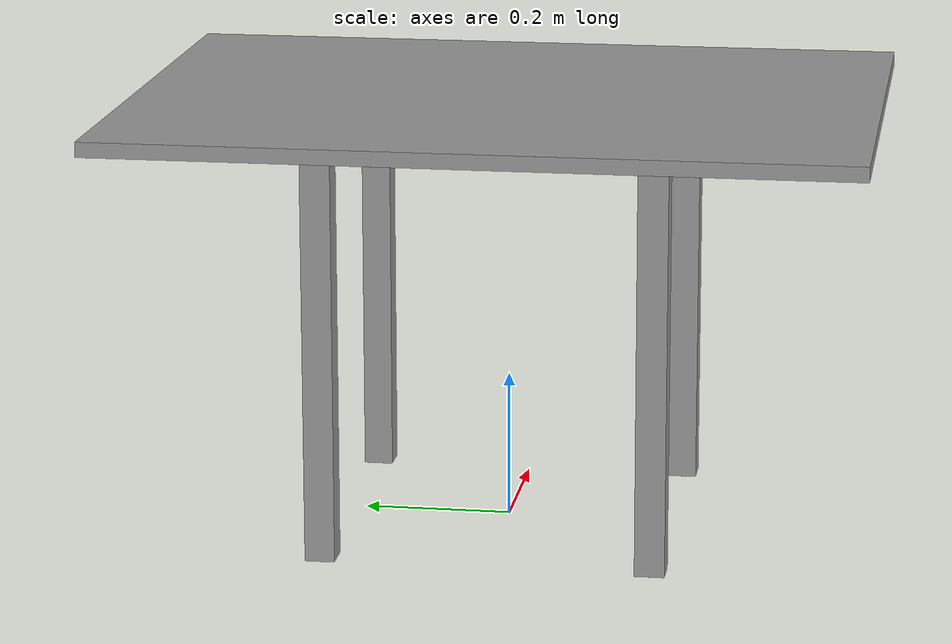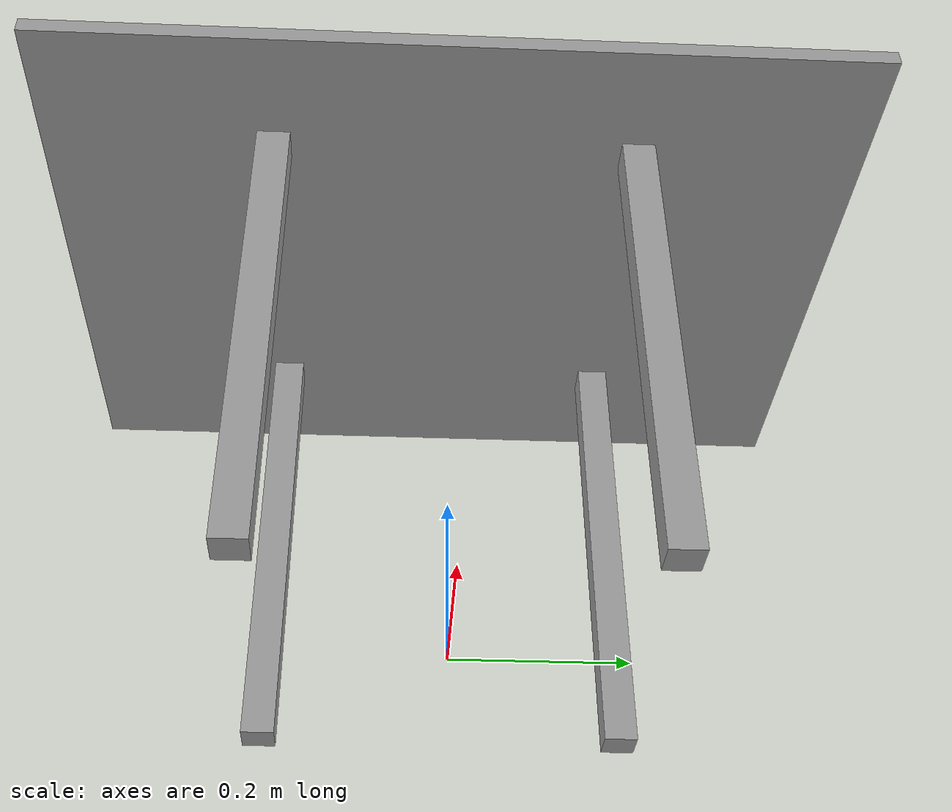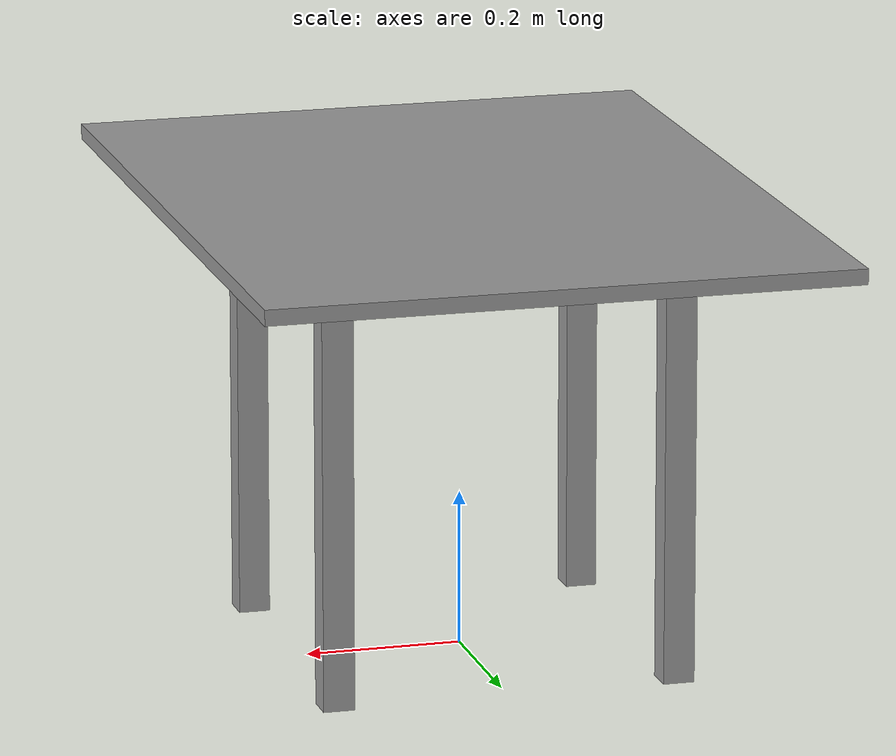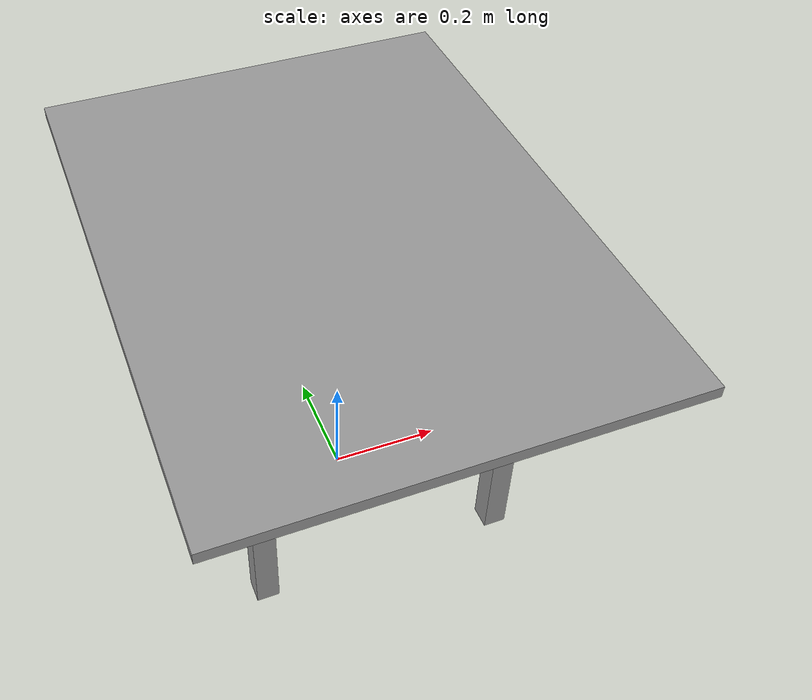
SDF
<?xml version="1.0"?>

<sdf version="1.6">
  <model name="cube_table">
    <static>true</static>

    <link name="top_plate">
      <pose>0 0 0.58 0 0 0</pose>
      <collision name="top_plate_collision">
        <geometry>
          <box>
            <size>0.75 1.0 0.02</size>
          </box>
        </geometry>
        <surface>
          <contact>
            <collide_bitmask>0x01</collide_bitmask>
          </contact>
        </surface>
      </collision>
      <visual name="top_plate_visual">
        <geometry>
          <box>
            <size>0.75 1.0 0.02</size>
          </box>
        </geometry>
        <material>
          <script>
            <uri>file://media/materials/scripts/gazebo.material</uri>
            <name>Gazebo/Grey</name>
          </script>
        </material>
      </visual>
    </link>
    <link name="leg1">
      <pose>0.22 0.22 0.285 0 0 0</pose>
      <collision name="leg1_collision">
        <geometry>
          <box>
            <size>0.04 0.04 0.57</size>
          </box>
        </geometry>
      </collision>
      <visual name="leg1_visual">
        <geometry>
          <box>
            <size>0.04 0.04 0.57</size>
          </box>
        </geometry>
        <material>
          <script>
            <uri>file://media/materials/scripts/gazebo.material</uri>
            <name>Gazebo/Grey</name>
          </script>
        </material>
      </visual>
    </link>
    <link name="leg2">
      <pose>-0.22 0.22 0.285 0 0 0</pose>
      <collision name="leg2_collision">
        <geometry>
          <box>
            <size>0.04 0.04 0.57</size>
          </box>
        </geometry>
      </collision>
      <visual name="leg2_visual">
        <geometry>
          <box>
            <size>0.04 0.04 0.57</size>
          </box>
        </geometry>
        <material>
          <script>
            <uri>file://media/materials/scripts/gazebo.material</uri>
            <name>Gazebo/Grey</name>
          </script>
        </material>
      </visual>
    </link>
    <link name="leg3">
      <pose>0.22 -0.22 0.285 0 0 0</pose>
      <collision name="leg3_collision">
        <geometry>
          <box>
            <size>0.04 0.04 0.57</size>
          </box>
        </geometry>
      </collision>
      <visual name="leg3_visual">
        <geometry>
          <box>
            <size>0.04 0.04 0.57</size>
          </box>
        </geometry>
        <material>
          <script>
            <uri>file://media/materials/scripts/gazebo.material</uri>
            <name>Gazebo/Grey</name>
          </script>
        </material>
      </visual>
    </link>
    <link name="leg4">
      <pose>-0.22 -0.22 0.285 0 0 0</pose>
      <collision name="leg4_collision">
        <geometry>
          <box>
            <size>0.04 0.04 0.57</size>
          </box>
        </geometry>
      </collision>
      <visual name="leg4_visual">
        <geometry>
          <box>
            <size>0.04 0.04 0.57</size>
          </box>
        </geometry>
        <material>
          <script>
            <uri>file://media/materials/scripts/gazebo.material</uri>
            <name>Gazebo/Grey</name>
          </script>
        </material>
      </visual>
    </link>
  </model>
</sdf>
